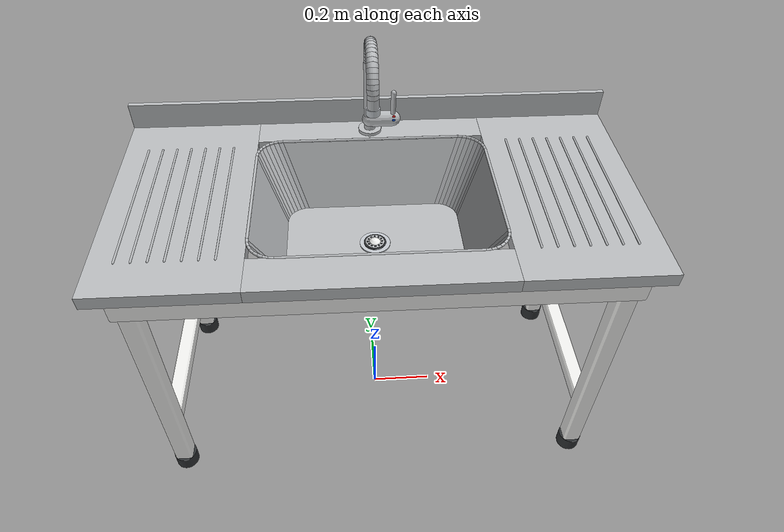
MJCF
<!-- Generated by scripts/generate_sink.py; do not edit by hand. -->
<mujoco model="sink"><asset>
<material name="panel" rgba="0.93 0.93 0.91 1" specular="0.35" shininess="0.5"/>
<material name="panel_joint" rgba="0.74 0.75 0.75 1"/>
<material name="floor" rgba="0.80 0.81 0.81 1" specular="0.3" shininess="0.6" reflectance="0.12"/>
<material name="ceiling" rgba="0.95 0.95 0.94 1" specular="0.05" emission="0.45"/>
<material name="led" rgba="0.98 0.99 1.0 1" emission="1"/>
<material name="grille" rgba="0.55 0.57 0.58 1"/>
<material name="worktop" rgba="0.95 0.95 0.94 1" specular="0.8" shininess="0.9" reflectance="0.3"/>
<material name="white" rgba="0.94 0.94 0.93 1" specular="0.3" shininess="0.4"/>
<material name="white_matte" rgba="0.92 0.92 0.91 1" specular="0.1"/>
<material name="shelf" rgba="0.95 0.95 0.95 1" specular="0.4" shininess="0.5"/>
<material name="seam" rgba="0.80 0.81 0.81 1"/>
<material name="amber" rgba="0.55 0.24 0.04 0.82" specular="0.9" shininess="0.95"/>
<material name="sample_hdpe" rgba="0.92 0.92 0.91 1" specular="0.25" shininess="0.4"/>
<material name="sample_cap" rgba="0.93 0.93 0.91 1" specular="0.3" shininess="0.5"/>
<material name="glass" rgba="0.80 0.90 0.95 0.15" specular="0.9" shininess="0.95" reflectance="0.1"/>
<material name="glass_clear" rgba="0.88 0.94 0.97 0.30" specular="0.9" shininess="0.95"/>
<material name="frosted" rgba="0.96 0.97 0.98 0.75"/>
<material name="aluminium" rgba="0.76 0.78 0.80 1" specular="0.7" shininess="0.7"/>
<material name="steel" rgba="0.72 0.73 0.74 1" specular="0.8" shininess="0.6"/>
<material name="black" rgba="0.05 0.05 0.06 1" specular="0.9" shininess="0.9"/>
<material name="dark" rgba="0.18 0.19 0.20 1"/>
<material name="grey_device" rgba="0.80 0.81 0.80 1" specular="0.3"/>
<material name="screen" rgba="0.10 0.16 0.22 1" emission="0.25"/>
<material name="orange" rgba="0.93 0.40 0.10 1"/>
<material name="blue_hdpe" rgba="0.05 0.28 0.72 1" specular="0.15"/>
<material name="blue_motor" rgba="0.10 0.30 0.70 1" specular="0.5"/>
<material name="stripe_blue" rgba="0.10 0.35 0.75 1"/>
<material name="cream" rgba="0.93 0.91 0.84 1" specular="0.3"/>
<material name="hdpe_white" rgba="0.93 0.93 0.90 0.85" specular="0.2"/>
<material name="kraft" rgba="0.60 0.45 0.28 1" specular="0.05"/>
<material name="tape" rgba="0.65 0.48 0.28 1" specular="0.3" shininess="0.2"/>
<material name="cardboard" rgba="0.72 0.58 0.40 1" specular="0.05"/>
<material name="red_rack" rgba="0.75 0.10 0.08 1" specular="0.3"/>
<material name="navy_rack" rgba="0.10 0.14 0.32 1" specular="0.3"/>
<material name="galvanised" rgba="0.68 0.70 0.71 1" specular="0.5"/>
<material name="foil" rgba="0.80 0.80 0.82 1" specular="1" shininess="1"/>
<material name="paper" rgba="0.98 0.98 0.97 1"/>
<material name="bag" rgba="0.95 0.95 0.93 0.55"/>
<material name="red_cap" rgba="0.80 0.10 0.10 1"/>
<material name="coat" rgba="0.95 0.96 0.97 1"/>
<material name="skin" rgba="0.80 0.64 0.52 1"/>
<material name="cap_blue" rgba="0.55 0.72 0.90 1"/>
<material name="trousers" rgba="0.20 0.22 0.28 1"/>
<material name="desk" rgba="0.86 0.84 0.80 1"/>
<mesh name="bevel_0" vertex="-0.028 -0.022 -0.394 -0.028 -0.022 0.394 -0.028 0.022 -0.394 -0.028 0.022 0.394 0.028 -0.022 -0.394 0.028 -0.022 0.394 0.028 0.022 -0.394 0.028 0.022 0.394 -0.022 -0.028 -0.394 -0.022 -0.028 0.394 -0.022 0.028 -0.394 -0.022 0.028 0.394 0.022 -0.028 -0.394 0.022 -0.028 0.394 0.022 0.028 -0.394 0.022 0.028 0.394 -0.022 -0.022 -0.4 -0.022 -0.022 0.4 -0.022 0.022 -0.4 -0.022 0.022 0.4 0.022 -0.022 -0.4 0.022 -0.022 0.4 0.022 0.022 -0.4 0.022 0.022 0.4"/>
<mesh name="bevel_1" vertex="-0.024 -0.2947 -0.0187 -0.024 -0.2947 0.0187 -0.024 0.2947 -0.0187 -0.024 0.2947 0.0187 0.024 -0.2947 -0.0187 0.024 -0.2947 0.0187 0.024 0.2947 -0.0187 0.024 0.2947 0.0187 -0.0187 -0.3 -0.0187 -0.0187 -0.3 0.0187 -0.0187 0.3 -0.0187 -0.0187 0.3 0.0187 0.0187 -0.3 -0.0187 0.0187 -0.3 0.0187 0.0187 0.3 -0.0187 0.0187 0.3 0.0187 -0.0187 -0.2947 -0.024 -0.0187 -0.2947 0.024 -0.0187 0.2947 -0.024 -0.0187 0.2947 0.024 0.0187 -0.2947 -0.024 0.0187 -0.2947 0.024 0.0187 0.2947 -0.024 0.0187 0.2947 0.024"/>
<mesh name="bevel_2" vertex="-0.67 -0.0187 -0.0187 -0.67 -0.0187 0.0187 -0.67 0.0187 -0.0187 -0.67 0.0187 0.0187 0.67 -0.0187 -0.0187 0.67 -0.0187 0.0187 0.67 0.0187 -0.0187 0.67 0.0187 0.0187 -0.6647 -0.024 -0.0187 -0.6647 -0.024 0.0187 -0.6647 0.024 -0.0187 -0.6647 0.024 0.0187 0.6647 -0.024 -0.0187 0.6647 -0.024 0.0187 0.6647 0.024 -0.0187 0.6647 0.024 0.0187 -0.6647 -0.0187 -0.024 -0.6647 -0.0187 0.024 -0.6647 0.0187 -0.024 -0.6647 0.0187 0.024 0.6647 -0.0187 -0.024 0.6647 -0.0187 0.024 0.6647 0.0187 -0.024 0.6647 0.0187 0.024"/>
<mesh name="bevel_3" vertex="-0.71 -0.0172 -0.0402 -0.71 -0.0172 0.0402 -0.71 0.0172 -0.0402 -0.71 0.0172 0.0402 0.71 -0.0172 -0.0402 0.71 -0.0172 0.0402 0.71 0.0172 -0.0402 0.71 0.0172 0.0402 -0.7052 -0.022 -0.0402 -0.7052 -0.022 0.0402 -0.7052 0.022 -0.0402 -0.7052 0.022 0.0402 0.7052 -0.022 -0.0402 0.7052 -0.022 0.0402 0.7052 0.022 -0.0402 0.7052 0.022 0.0402 -0.7052 -0.0172 -0.045 -0.7052 -0.0172 0.045 -0.7052 0.0172 -0.045 -0.7052 0.0172 0.045 0.7052 -0.0172 -0.045 0.7052 -0.0172 0.045 0.7052 0.0172 -0.045 0.7052 0.0172 0.045"/>
<mesh name="bowl_panel_0" vertex="0.349 0.185 0.919 0.3476 0.1996 0.919 0.27 0.115 0.715 0.2688 0.1277 0.715 0.349 0.185 0.915 0.3476 0.1996 0.915 0.27 0.115 0.711 0.2688 0.1277 0.711"/>
<mesh name="bowl_panel_1" vertex="0.3476 0.1996 0.919 0.3433 0.2137 0.919 0.2688 0.1277 0.715 0.2651 0.1399 0.715 0.3476 0.1996 0.915 0.3433 0.2137 0.915 0.2688 0.1277 0.711 0.2651 0.1399 0.711"/>
<mesh name="bowl_panel_2" vertex="0.3433 0.2137 0.919 0.3364 0.2267 0.919 0.2651 0.1399 0.715 0.259 0.1511 0.715 0.3433 0.2137 0.915 0.3364 0.2267 0.915 0.2651 0.1399 0.711 0.259 0.1511 0.711"/>
<mesh name="bowl_panel_3" vertex="0.3364 0.2267 0.919 0.327 0.238 0.919 0.259 0.1511 0.715 0.251 0.161 0.715 0.3364 0.2267 0.915 0.327 0.238 0.915 0.259 0.1511 0.711 0.251 0.161 0.711"/>
<mesh name="bowl_panel_4" vertex="0.327 0.238 0.919 0.3157 0.2474 0.919 0.251 0.161 0.715 0.2411 0.169 0.715 0.327 0.238 0.915 0.3157 0.2474 0.915 0.251 0.161 0.711 0.2411 0.169 0.711"/>
<mesh name="bowl_panel_5" vertex="0.3157 0.2474 0.919 0.3027 0.2543 0.919 0.2411 0.169 0.715 0.2299 0.1751 0.715 0.3157 0.2474 0.915 0.3027 0.2543 0.915 0.2411 0.169 0.711 0.2299 0.1751 0.711"/>
<mesh name="bowl_panel_6" vertex="0.3027 0.2543 0.919 0.2886 0.2586 0.919 0.2299 0.1751 0.715 0.2177 0.1788 0.715 0.3027 0.2543 0.915 0.2886 0.2586 0.915 0.2299 0.1751 0.711 0.2177 0.1788 0.711"/>
<mesh name="bowl_panel_7" vertex="0.2886 0.2586 0.919 0.274 0.26 0.919 0.2177 0.1788 0.715 0.205 0.18 0.715 0.2886 0.2586 0.915 0.274 0.26 0.915 0.2177 0.1788 0.711 0.205 0.18 0.711"/>
<mesh name="bowl_panel_8" vertex="0.274 0.26 0.919 -0.274 0.26 0.919 0.205 0.18 0.715 -0.205 0.18 0.715 0.274 0.26 0.915 -0.274 0.26 0.915 0.205 0.18 0.711 -0.205 0.18 0.711"/>
<mesh name="bowl_panel_9" vertex="-0.274 0.26 0.919 -0.2886 0.2586 0.919 -0.205 0.18 0.715 -0.2177 0.1788 0.715 -0.274 0.26 0.915 -0.2886 0.2586 0.915 -0.205 0.18 0.711 -0.2177 0.1788 0.711"/>
<mesh name="bowl_panel_10" vertex="-0.2886 0.2586 0.919 -0.3027 0.2543 0.919 -0.2177 0.1788 0.715 -0.2299 0.1751 0.715 -0.2886 0.2586 0.915 -0.3027 0.2543 0.915 -0.2177 0.1788 0.711 -0.2299 0.1751 0.711"/>
<mesh name="bowl_panel_11" vertex="-0.3027 0.2543 0.919 -0.3157 0.2474 0.919 -0.2299 0.1751 0.715 -0.2411 0.169 0.715 -0.3027 0.2543 0.915 -0.3157 0.2474 0.915 -0.2299 0.1751 0.711 -0.2411 0.169 0.711"/>
<mesh name="bowl_panel_12" vertex="-0.3157 0.2474 0.919 -0.327 0.238 0.919 -0.2411 0.169 0.715 -0.251 0.161 0.715 -0.3157 0.2474 0.915 -0.327 0.238 0.915 -0.2411 0.169 0.711 -0.251 0.161 0.711"/>
<mesh name="bowl_panel_13" vertex="-0.327 0.238 0.919 -0.3364 0.2267 0.919 -0.251 0.161 0.715 -0.259 0.1511 0.715 -0.327 0.238 0.915 -0.3364 0.2267 0.915 -0.251 0.161 0.711 -0.259 0.1511 0.711"/>
<mesh name="bowl_panel_14" vertex="-0.3364 0.2267 0.919 -0.3433 0.2137 0.919 -0.259 0.1511 0.715 -0.2651 0.1399 0.715 -0.3364 0.2267 0.915 -0.3433 0.2137 0.915 -0.259 0.1511 0.711 -0.2651 0.1399 0.711"/>
<mesh name="bowl_panel_15" vertex="-0.3433 0.2137 0.919 -0.3476 0.1996 0.919 -0.2651 0.1399 0.715 -0.2688 0.1277 0.715 -0.3433 0.2137 0.915 -0.3476 0.1996 0.915 -0.2651 0.1399 0.711 -0.2688 0.1277 0.711"/>
<mesh name="bowl_panel_16" vertex="-0.3476 0.1996 0.919 -0.349 0.185 0.919 -0.2688 0.1277 0.715 -0.27 0.115 0.715 -0.3476 0.1996 0.915 -0.349 0.185 0.915 -0.2688 0.1277 0.711 -0.27 0.115 0.711"/>
<mesh name="bowl_panel_17" vertex="-0.349 0.185 0.919 -0.349 -0.185 0.919 -0.27 0.115 0.715 -0.27 -0.115 0.715 -0.349 0.185 0.915 -0.349 -0.185 0.915 -0.27 0.115 0.711 -0.27 -0.115 0.711"/>
<mesh name="bowl_panel_18" vertex="-0.349 -0.185 0.919 -0.3476 -0.1996 0.919 -0.27 -0.115 0.715 -0.2688 -0.1277 0.715 -0.349 -0.185 0.915 -0.3476 -0.1996 0.915 -0.27 -0.115 0.711 -0.2688 -0.1277 0.711"/>
<mesh name="bowl_panel_19" vertex="-0.3476 -0.1996 0.919 -0.3433 -0.2137 0.919 -0.2688 -0.1277 0.715 -0.2651 -0.1399 0.715 -0.3476 -0.1996 0.915 -0.3433 -0.2137 0.915 -0.2688 -0.1277 0.711 -0.2651 -0.1399 0.711"/>
<mesh name="bowl_panel_20" vertex="-0.3433 -0.2137 0.919 -0.3364 -0.2267 0.919 -0.2651 -0.1399 0.715 -0.259 -0.1511 0.715 -0.3433 -0.2137 0.915 -0.3364 -0.2267 0.915 -0.2651 -0.1399 0.711 -0.259 -0.1511 0.711"/>
<mesh name="bowl_panel_21" vertex="-0.3364 -0.2267 0.919 -0.327 -0.238 0.919 -0.259 -0.1511 0.715 -0.251 -0.161 0.715 -0.3364 -0.2267 0.915 -0.327 -0.238 0.915 -0.259 -0.1511 0.711 -0.251 -0.161 0.711"/>
<mesh name="bowl_panel_22" vertex="-0.327 -0.238 0.919 -0.3157 -0.2474 0.919 -0.251 -0.161 0.715 -0.2411 -0.169 0.715 -0.327 -0.238 0.915 -0.3157 -0.2474 0.915 -0.251 -0.161 0.711 -0.2411 -0.169 0.711"/>
<mesh name="bowl_panel_23" vertex="-0.3157 -0.2474 0.919 -0.3027 -0.2543 0.919 -0.2411 -0.169 0.715 -0.2299 -0.1751 0.715 -0.3157 -0.2474 0.915 -0.3027 -0.2543 0.915 -0.2411 -0.169 0.711 -0.2299 -0.1751 0.711"/>
<mesh name="bowl_panel_24" vertex="-0.3027 -0.2543 0.919 -0.2886 -0.2586 0.919 -0.2299 -0.1751 0.715 -0.2177 -0.1788 0.715 -0.3027 -0.2543 0.915 -0.2886 -0.2586 0.915 -0.2299 -0.1751 0.711 -0.2177 -0.1788 0.711"/>
<mesh name="bowl_panel_25" vertex="-0.2886 -0.2586 0.919 -0.274 -0.26 0.919 -0.2177 -0.1788 0.715 -0.205 -0.18 0.715 -0.2886 -0.2586 0.915 -0.274 -0.26 0.915 -0.2177 -0.1788 0.711 -0.205 -0.18 0.711"/>
<mesh name="bowl_panel_26" vertex="-0.274 -0.26 0.919 0.274 -0.26 0.919 -0.205 -0.18 0.715 0.205 -0.18 0.715 -0.274 -0.26 0.915 0.274 -0.26 0.915 -0.205 -0.18 0.711 0.205 -0.18 0.711"/>
<mesh name="bowl_panel_27" vertex="0.274 -0.26 0.919 0.2886 -0.2586 0.919 0.205 -0.18 0.715 0.2177 -0.1788 0.715 0.274 -0.26 0.915 0.2886 -0.2586 0.915 0.205 -0.18 0.711 0.2177 -0.1788 0.711"/>
<mesh name="bowl_panel_28" vertex="0.2886 -0.2586 0.919 0.3027 -0.2543 0.919 0.2177 -0.1788 0.715 0.2299 -0.1751 0.715 0.2886 -0.2586 0.915 0.3027 -0.2543 0.915 0.2177 -0.1788 0.711 0.2299 -0.1751 0.711"/>
<mesh name="bowl_panel_29" vertex="0.3027 -0.2543 0.919 0.3157 -0.2474 0.919 0.2299 -0.1751 0.715 0.2411 -0.169 0.715 0.3027 -0.2543 0.915 0.3157 -0.2474 0.915 0.2299 -0.1751 0.711 0.2411 -0.169 0.711"/>
<mesh name="bowl_panel_30" vertex="0.3157 -0.2474 0.919 0.327 -0.238 0.919 0.2411 -0.169 0.715 0.251 -0.161 0.715 0.3157 -0.2474 0.915 0.327 -0.238 0.915 0.2411 -0.169 0.711 0.251 -0.161 0.711"/>
<mesh name="bowl_panel_31" vertex="0.327 -0.238 0.919 0.3364 -0.2267 0.919 0.251 -0.161 0.715 0.259 -0.1511 0.715 0.327 -0.238 0.915 0.3364 -0.2267 0.915 0.251 -0.161 0.711 0.259 -0.1511 0.711"/>
<mesh name="bowl_panel_32" vertex="0.3364 -0.2267 0.919 0.3433 -0.2137 0.919 0.259 -0.1511 0.715 0.2651 -0.1399 0.715 0.3364 -0.2267 0.915 0.3433 -0.2137 0.915 0.259 -0.1511 0.711 0.2651 -0.1399 0.711"/>
<mesh name="bowl_panel_33" vertex="0.3433 -0.2137 0.919 0.3476 -0.1996 0.919 0.2651 -0.1399 0.715 0.2688 -0.1277 0.715 0.3433 -0.2137 0.915 0.3476 -0.1996 0.915 0.2651 -0.1399 0.711 0.2688 -0.1277 0.711"/>
<mesh name="bowl_panel_34" vertex="0.3476 -0.1996 0.919 0.349 -0.185 0.919 0.2688 -0.1277 0.715 0.27 -0.115 0.715 0.3476 -0.1996 0.915 0.349 -0.185 0.915 0.2688 -0.1277 0.711 0.27 -0.115 0.711"/>
<mesh name="bowl_panel_35" vertex="0.349 -0.185 0.919 0.349 0.185 0.919 0.27 -0.115 0.715 0.27 0.115 0.715 0.349 -0.185 0.915 0.349 0.185 0.915 0.27 -0.115 0.711 0.27 0.115 0.711"/>
<mesh name="bowl_floor" vertex="0.27 0.115 0.715 0.2688 0.1277 0.715 0.2651 0.1399 0.715 0.259 0.1511 0.715 0.251 0.161 0.715 0.2411 0.169 0.715 0.2299 0.1751 0.715 0.2177 0.1788 0.715 0.205 0.18 0.715 -0.205 0.18 0.715 -0.2177 0.1788 0.715 -0.2299 0.1751 0.715 -0.2411 0.169 0.715 -0.251 0.161 0.715 -0.259 0.1511 0.715 -0.2651 0.1399 0.715 -0.2688 0.1277 0.715 -0.27 0.115 0.715 -0.27 -0.115 0.715 -0.2688 -0.1277 0.715 -0.2651 -0.1399 0.715 -0.259 -0.1511 0.715 -0.251 -0.161 0.715 -0.2411 -0.169 0.715 -0.2299 -0.1751 0.715 -0.2177 -0.1788 0.715 -0.205 -0.18 0.715 0.205 -0.18 0.715 0.2177 -0.1788 0.715 0.2299 -0.1751 0.715 0.2411 -0.169 0.715 0.251 -0.161 0.715 0.259 -0.1511 0.715 0.2651 -0.1399 0.715 0.2688 -0.1277 0.715 0.27 -0.115 0.715 0.27 0.115 0.709 0.2688 0.1277 0.709 0.2651 0.1399 0.709 0.259 0.1511 0.709 0.251 0.161 0.709 0.2411 0.169 0.709 0.2299 0.1751 0.709 0.2177 0.1788 0.709 0.205 0.18 0.709 -0.205 0.18 0.709 -0.2177 0.1788 0.709 -0.2299 0.1751 0.709 -0.2411 0.169 0.709 -0.251 0.161 0.709 -0.259 0.1511 0.709 -0.2651 0.1399 0.709 -0.2688 0.1277 0.709 -0.27 0.115 0.709 -0.27 -0.115 0.709 -0.2688 -0.1277 0.709 -0.2651 -0.1399 0.709 -0.259 -0.1511 0.709 -0.251 -0.161 0.709 -0.2411 -0.169 0.709 -0.2299 -0.1751 0.709 -0.2177 -0.1788 0.709 -0.205 -0.18 0.709 0.205 -0.18 0.709 0.2177 -0.1788 0.709 0.2299 -0.1751 0.709 0.2411 -0.169 0.709 0.251 -0.161 0.709 0.259 -0.1511 0.709 0.2651 -0.1399 0.709 0.2688 -0.1277 0.709 0.27 -0.115 0.709"/>
</asset><worldbody><body name="sink">
      <geom type="box" pos="-0.67 -0.3 0.44" size="0.028 0.028 0.4" group="3" rgba="0 0 0 0"/>
      <geom name="leg_0" type="mesh" mesh="bevel_0" pos="-0.67 -0.3 0.44" material="white" contype="0" conaffinity="0" group="1"/>
      <geom name="adjustable_foot_0" type="cylinder" pos="-0.67 -0.3 0.025" size="0.037 0.025" material="dark" group="1"/>
      <geom name="foot_thread_0" type="cylinder" pos="-0.67 -0.3 0.061" size="0.014 0.027" material="steel" contype="0" conaffinity="0" group="1"/>
      <geom type="box" pos="-0.67 0.3 0.44" size="0.028 0.028 0.4" group="3" rgba="0 0 0 0"/>
      <geom name="leg_1" type="mesh" mesh="bevel_0" pos="-0.67 0.3 0.44" material="white" contype="0" conaffinity="0" group="1"/>
      <geom name="adjustable_foot_1" type="cylinder" pos="-0.67 0.3 0.025" size="0.037 0.025" material="dark" group="1"/>
      <geom name="foot_thread_1" type="cylinder" pos="-0.67 0.3 0.061" size="0.014 0.027" material="steel" contype="0" conaffinity="0" group="1"/>
      <geom type="box" pos="-0.67 0 0.24" size="0.024 0.3 0.024" group="3" rgba="0 0 0 0"/>
      <geom name="end_rail_0" type="mesh" mesh="bevel_1" pos="-0.67 0 0.24" material="white" contype="0" conaffinity="0" group="1"/>
      <geom type="box" pos="0.67 -0.3 0.44" size="0.028 0.028 0.4" group="3" rgba="0 0 0 0"/>
      <geom name="leg_2" type="mesh" mesh="bevel_0" pos="0.67 -0.3 0.44" material="white" contype="0" conaffinity="0" group="1"/>
      <geom name="adjustable_foot_2" type="cylinder" pos="0.67 -0.3 0.025" size="0.037 0.025" material="dark" group="1"/>
      <geom name="foot_thread_2" type="cylinder" pos="0.67 -0.3 0.061" size="0.014 0.027" material="steel" contype="0" conaffinity="0" group="1"/>
      <geom type="box" pos="0.67 0.3 0.44" size="0.028 0.028 0.4" group="3" rgba="0 0 0 0"/>
      <geom name="leg_3" type="mesh" mesh="bevel_0" pos="0.67 0.3 0.44" material="white" contype="0" conaffinity="0" group="1"/>
      <geom name="adjustable_foot_3" type="cylinder" pos="0.67 0.3 0.025" size="0.037 0.025" material="dark" group="1"/>
      <geom name="foot_thread_3" type="cylinder" pos="0.67 0.3 0.061" size="0.014 0.027" material="steel" contype="0" conaffinity="0" group="1"/>
      <geom type="box" pos="0.67 0 0.24" size="0.024 0.3 0.024" group="3" rgba="0 0 0 0"/>
      <geom name="end_rail_1" type="mesh" mesh="bevel_1" pos="0.67 0 0.24" material="white" contype="0" conaffinity="0" group="1"/>
      <geom type="box" pos="0 0.3 0.24" size="0.67 0.024 0.024" group="3" rgba="0 0 0 0"/>
      <geom name="rear_rail_0" type="mesh" mesh="bevel_2" pos="0 0.3 0.24" material="white" contype="0" conaffinity="0" group="1"/>
      <geom type="box" pos="0 -0.32 0.83" size="0.71 0.022 0.045" group="3" rgba="0 0 0 0"/>
      <geom name="apron_0" type="mesh" mesh="bevel_3" pos="0 -0.32 0.83" material="white" contype="0" conaffinity="0" group="1"/>
      <geom type="box" pos="0 0.32 0.83" size="0.71 0.022 0.045" group="3" rgba="0 0 0 0"/>
      <geom name="apron_1" type="mesh" mesh="bevel_3" pos="0 0.32 0.83" material="white" contype="0" conaffinity="0" group="1"/>
      <geom name="draining_board_0" type="box" size="0.201 0.377 0.019" pos="-0.55 0 0.901" material="steel" group="1"/>
      <geom name="drainer_rib_0" type="capsule" fromto="-0.68 -0.26 0.922 -0.68 0.23 0.922" size="0.003" material="steel" contype="0" conaffinity="0" group="1"/>
      <geom name="drainer_rib_1" type="capsule" fromto="-0.637 -0.26 0.922 -0.637 0.23 0.922" size="0.003" material="steel" contype="0" conaffinity="0" group="1"/>
      <geom name="drainer_rib_2" type="capsule" fromto="-0.594 -0.26 0.922 -0.594 0.23 0.922" size="0.003" material="steel" contype="0" conaffinity="0" group="1"/>
      <geom name="drainer_rib_3" type="capsule" fromto="-0.551 -0.26 0.922 -0.551 0.23 0.922" size="0.003" material="steel" contype="0" conaffinity="0" group="1"/>
      <geom name="drainer_rib_4" type="capsule" fromto="-0.508 -0.26 0.922 -0.508 0.23 0.922" size="0.003" material="steel" contype="0" conaffinity="0" group="1"/>
      <geom name="drainer_rib_5" type="capsule" fromto="-0.465 -0.26 0.922 -0.465 0.23 0.922" size="0.003" material="steel" contype="0" conaffinity="0" group="1"/>
      <geom name="drainer_rib_6" type="capsule" fromto="-0.422 -0.26 0.922 -0.422 0.23 0.922" size="0.003" material="steel" contype="0" conaffinity="0" group="1"/>
      <geom name="draining_board_1" type="box" size="0.201 0.377 0.019" pos="0.55 0 0.901" material="steel" group="1"/>
      <geom name="drainer_rib_7" type="capsule" fromto="0.42 -0.26 0.922 0.42 0.23 0.922" size="0.003" material="steel" contype="0" conaffinity="0" group="1"/>
      <geom name="drainer_rib_8" type="capsule" fromto="0.463 -0.26 0.922 0.463 0.23 0.922" size="0.003" material="steel" contype="0" conaffinity="0" group="1"/>
      <geom name="drainer_rib_9" type="capsule" fromto="0.506 -0.26 0.922 0.506 0.23 0.922" size="0.003" material="steel" contype="0" conaffinity="0" group="1"/>
      <geom name="drainer_rib_10" type="capsule" fromto="0.549 -0.26 0.922 0.549 0.23 0.922" size="0.003" material="steel" contype="0" conaffinity="0" group="1"/>
      <geom name="drainer_rib_11" type="capsule" fromto="0.592 -0.26 0.922 0.592 0.23 0.922" size="0.003" material="steel" contype="0" conaffinity="0" group="1"/>
      <geom name="drainer_rib_12" type="capsule" fromto="0.635 -0.26 0.922 0.635 0.23 0.922" size="0.003" material="steel" contype="0" conaffinity="0" group="1"/>
      <geom name="drainer_rib_13" type="capsule" fromto="0.678 -0.26 0.922 0.678 0.23 0.922" size="0.003" material="steel" contype="0" conaffinity="0" group="1"/>
      <geom name="basin_rim_0" type="box" size="0.349 0.0585 0.019" pos="0 -0.3185 0.901" material="steel" group="1"/>
      <geom name="basin_rim_1" type="box" size="0.349 0.0585 0.019" pos="0 0.3185 0.901" material="steel" group="1"/>
      <geom name="backsplash_0" type="box" size="0.751 0.008 0.043" pos="0 0.369 0.957" material="steel" group="1"/>
      <geom name="bowl_panel_0" type="mesh" mesh="bowl_panel_0" material="steel" group="1"/>
      <geom name="rolled_rim_0" type="capsule" fromto="0.349 0.185 0.919 0.3476 0.1996 0.919" size="0.004" material="steel" contype="0" conaffinity="0" group="1"/>
      <geom name="bowl_panel_1" type="mesh" mesh="bowl_panel_1" material="steel" group="1"/>
      <geom name="rolled_rim_1" type="capsule" fromto="0.3476 0.1996 0.919 0.3433 0.2137 0.919" size="0.004" material="steel" contype="0" conaffinity="0" group="1"/>
      <geom name="bowl_panel_2" type="mesh" mesh="bowl_panel_2" material="steel" group="1"/>
      <geom name="rolled_rim_2" type="capsule" fromto="0.3433 0.2137 0.919 0.3364 0.2267 0.919" size="0.004" material="steel" contype="0" conaffinity="0" group="1"/>
      <geom name="bowl_panel_3" type="mesh" mesh="bowl_panel_3" material="steel" group="1"/>
      <geom name="rolled_rim_3" type="capsule" fromto="0.3364 0.2267 0.919 0.327 0.238 0.919" size="0.004" material="steel" contype="0" conaffinity="0" group="1"/>
      <geom name="bowl_panel_4" type="mesh" mesh="bowl_panel_4" material="steel" group="1"/>
      <geom name="rolled_rim_4" type="capsule" fromto="0.327 0.238 0.919 0.3157 0.2474 0.919" size="0.004" material="steel" contype="0" conaffinity="0" group="1"/>
      <geom name="bowl_panel_5" type="mesh" mesh="bowl_panel_5" material="steel" group="1"/>
      <geom name="rolled_rim_5" type="capsule" fromto="0.3157 0.2474 0.919 0.3027 0.2543 0.919" size="0.004" material="steel" contype="0" conaffinity="0" group="1"/>
      <geom name="bowl_panel_6" type="mesh" mesh="bowl_panel_6" material="steel" group="1"/>
      <geom name="rolled_rim_6" type="capsule" fromto="0.3027 0.2543 0.919 0.2886 0.2586 0.919" size="0.004" material="steel" contype="0" conaffinity="0" group="1"/>
      <geom name="bowl_panel_7" type="mesh" mesh="bowl_panel_7" material="steel" group="1"/>
      <geom name="rolled_rim_7" type="capsule" fromto="0.2886 0.2586 0.919 0.274 0.26 0.919" size="0.004" material="steel" contype="0" conaffinity="0" group="1"/>
      <geom name="bowl_panel_8" type="mesh" mesh="bowl_panel_8" material="steel" group="1"/>
      <geom name="rolled_rim_8" type="capsule" fromto="0.274 0.26 0.919 -0.274 0.26 0.919" size="0.004" material="steel" contype="0" conaffinity="0" group="1"/>
      <geom name="bowl_panel_9" type="mesh" mesh="bowl_panel_9" material="steel" group="1"/>
      <geom name="rolled_rim_9" type="capsule" fromto="-0.274 0.26 0.919 -0.2886 0.2586 0.919" size="0.004" material="steel" contype="0" conaffinity="0" group="1"/>
      <geom name="bowl_panel_10" type="mesh" mesh="bowl_panel_10" material="steel" group="1"/>
      <geom name="rolled_rim_10" type="capsule" fromto="-0.2886 0.2586 0.919 -0.3027 0.2543 0.919" size="0.004" material="steel" contype="0" conaffinity="0" group="1"/>
      <geom name="bowl_panel_11" type="mesh" mesh="bowl_panel_11" material="steel" group="1"/>
      <geom name="rolled_rim_11" type="capsule" fromto="-0.3027 0.2543 0.919 -0.3157 0.2474 0.919" size="0.004" material="steel" contype="0" conaffinity="0" group="1"/>
      <geom name="bowl_panel_12" type="mesh" mesh="bowl_panel_12" material="steel" group="1"/>
      <geom name="rolled_rim_12" type="capsule" fromto="-0.3157 0.2474 0.919 -0.327 0.238 0.919" size="0.004" material="steel" contype="0" conaffinity="0" group="1"/>
      <geom name="bowl_panel_13" type="mesh" mesh="bowl_panel_13" material="steel" group="1"/>
      <geom name="rolled_rim_13" type="capsule" fromto="-0.327 0.238 0.919 -0.3364 0.2267 0.919" size="0.004" material="steel" contype="0" conaffinity="0" group="1"/>
      <geom name="bowl_panel_14" type="mesh" mesh="bowl_panel_14" material="steel" group="1"/>
      <geom name="rolled_rim_14" type="capsule" fromto="-0.3364 0.2267 0.919 -0.3433 0.2137 0.919" size="0.004" material="steel" contype="0" conaffinity="0" group="1"/>
      <geom name="bowl_panel_15" type="mesh" mesh="bowl_panel_15" material="steel" group="1"/>
      <geom name="rolled_rim_15" type="capsule" fromto="-0.3433 0.2137 0.919 -0.3476 0.1996 0.919" size="0.004" material="steel" contype="0" conaffinity="0" group="1"/>
      <geom name="bowl_panel_16" type="mesh" mesh="bowl_panel_16" material="steel" group="1"/>
      <geom name="rolled_rim_16" type="capsule" fromto="-0.3476 0.1996 0.919 -0.349 0.185 0.919" size="0.004" material="steel" contype="0" conaffinity="0" group="1"/>
      <geom name="bowl_panel_17" type="mesh" mesh="bowl_panel_17" material="steel" group="1"/>
      <geom name="rolled_rim_17" type="capsule" fromto="-0.349 0.185 0.919 -0.349 -0.185 0.919" size="0.004" material="steel" contype="0" conaffinity="0" group="1"/>
      <geom name="bowl_panel_18" type="mesh" mesh="bowl_panel_18" material="steel" group="1"/>
      <geom name="rolled_rim_18" type="capsule" fromto="-0.349 -0.185 0.919 -0.3476 -0.1996 0.919" size="0.004" material="steel" contype="0" conaffinity="0" group="1"/>
      <geom name="bowl_panel_19" type="mesh" mesh="bowl_panel_19" material="steel" group="1"/>
      <geom name="rolled_rim_19" type="capsule" fromto="-0.3476 -0.1996 0.919 -0.3433 -0.2137 0.919" size="0.004" material="steel" contype="0" conaffinity="0" group="1"/>
      <geom name="bowl_panel_20" type="mesh" mesh="bowl_panel_20" material="steel" group="1"/>
      <geom name="rolled_rim_20" type="capsule" fromto="-0.3433 -0.2137 0.919 -0.3364 -0.2267 0.919" size="0.004" material="steel" contype="0" conaffinity="0" group="1"/>
      <geom name="bowl_panel_21" type="mesh" mesh="bowl_panel_21" material="steel" group="1"/>
      <geom name="rolled_rim_21" type="capsule" fromto="-0.3364 -0.2267 0.919 -0.327 -0.238 0.919" size="0.004" material="steel" contype="0" conaffinity="0" group="1"/>
      <geom name="bowl_panel_22" type="mesh" mesh="bowl_panel_22" material="steel" group="1"/>
      <geom name="rolled_rim_22" type="capsule" fromto="-0.327 -0.238 0.919 -0.3157 -0.2474 0.919" size="0.004" material="steel" contype="0" conaffinity="0" group="1"/>
      <geom name="bowl_panel_23" type="mesh" mesh="bowl_panel_23" material="steel" group="1"/>
      <geom name="rolled_rim_23" type="capsule" fromto="-0.3157 -0.2474 0.919 -0.3027 -0.2543 0.919" size="0.004" material="steel" contype="0" conaffinity="0" group="1"/>
      <geom name="bowl_panel_24" type="mesh" mesh="bowl_panel_24" material="steel" group="1"/>
      <geom name="rolled_rim_24" type="capsule" fromto="-0.3027 -0.2543 0.919 -0.2886 -0.2586 0.919" size="0.004" material="steel" contype="0" conaffinity="0" group="1"/>
      <geom name="bowl_panel_25" type="mesh" mesh="bowl_panel_25" material="steel" group="1"/>
      <geom name="rolled_rim_25" type="capsule" fromto="-0.2886 -0.2586 0.919 -0.274 -0.26 0.919" size="0.004" material="steel" contype="0" conaffinity="0" group="1"/>
      <geom name="bowl_panel_26" type="mesh" mesh="bowl_panel_26" material="steel" group="1"/>
      <geom name="rolled_rim_26" type="capsule" fromto="-0.274 -0.26 0.919 0.274 -0.26 0.919" size="0.004" material="steel" contype="0" conaffinity="0" group="1"/>
      <geom name="bowl_panel_27" type="mesh" mesh="bowl_panel_27" material="steel" group="1"/>
      <geom name="rolled_rim_27" type="capsule" fromto="0.274 -0.26 0.919 0.2886 -0.2586 0.919" size="0.004" material="steel" contype="0" conaffinity="0" group="1"/>
      <geom name="bowl_panel_28" type="mesh" mesh="bowl_panel_28" material="steel" group="1"/>
      <geom name="rolled_rim_28" type="capsule" fromto="0.2886 -0.2586 0.919 0.3027 -0.2543 0.919" size="0.004" material="steel" contype="0" conaffinity="0" group="1"/>
      <geom name="bowl_panel_29" type="mesh" mesh="bowl_panel_29" material="steel" group="1"/>
      <geom name="rolled_rim_29" type="capsule" fromto="0.3027 -0.2543 0.919 0.3157 -0.2474 0.919" size="0.004" material="steel" contype="0" conaffinity="0" group="1"/>
      <geom name="bowl_panel_30" type="mesh" mesh="bowl_panel_30" material="steel" group="1"/>
      <geom name="rolled_rim_30" type="capsule" fromto="0.3157 -0.2474 0.919 0.327 -0.238 0.919" size="0.004" material="steel" contype="0" conaffinity="0" group="1"/>
      <geom name="bowl_panel_31" type="mesh" mesh="bowl_panel_31" material="steel" group="1"/>
      <geom name="rolled_rim_31" type="capsule" fromto="0.327 -0.238 0.919 0.3364 -0.2267 0.919" size="0.004" material="steel" contype="0" conaffinity="0" group="1"/>
      <geom name="bowl_panel_32" type="mesh" mesh="bowl_panel_32" material="steel" group="1"/>
      <geom name="rolled_rim_32" type="capsule" fromto="0.3364 -0.2267 0.919 0.3433 -0.2137 0.919" size="0.004" material="steel" contype="0" conaffinity="0" group="1"/>
      <geom name="bowl_panel_33" type="mesh" mesh="bowl_panel_33" material="steel" group="1"/>
      <geom name="rolled_rim_33" type="capsule" fromto="0.3433 -0.2137 0.919 0.3476 -0.1996 0.919" size="0.004" material="steel" contype="0" conaffinity="0" group="1"/>
      <geom name="bowl_panel_34" type="mesh" mesh="bowl_panel_34" material="steel" group="1"/>
      <geom name="rolled_rim_34" type="capsule" fromto="0.3476 -0.1996 0.919 0.349 -0.185 0.919" size="0.004" material="steel" contype="0" conaffinity="0" group="1"/>
      <geom name="bowl_panel_35" type="mesh" mesh="bowl_panel_35" material="steel" group="1"/>
      <geom name="rolled_rim_35" type="capsule" fromto="0.349 -0.185 0.919 0.349 0.185 0.919" size="0.004" material="steel" contype="0" conaffinity="0" group="1"/>
      <geom name="bowl_floor" type="mesh" mesh="bowl_floor" material="steel" group="1"/>
      <geom name="drain_flange_0" type="cylinder" pos="0 0 0.717" size="0.047 0.002" material="aluminium" contype="0" conaffinity="0" group="1"/>
      <geom name="drain_inset_0" type="cylinder" pos="0 0 0.72" size="0.034 0.001" material="dark" contype="0" conaffinity="0" group="1"/>
      <geom name="strainer_0" type="cylinder" pos="0 0 0.722" size="0.029 0.001" material="steel" contype="0" conaffinity="0" group="1"/>
      <geom name="strainer_hole_0" type="cylinder" pos="0.022 0 0.7232" size="0.003 0.0003" material="dark" contype="0" conaffinity="0" group="1"/>
      <geom name="strainer_hole_1" type="cylinder" pos="0.0191 0.011 0.7232" size="0.003 0.0003" material="dark" contype="0" conaffinity="0" group="1"/>
      <geom name="strainer_hole_2" type="cylinder" pos="0.011 0.0191 0.7232" size="0.003 0.0003" material="dark" contype="0" conaffinity="0" group="1"/>
      <geom name="strainer_hole_3" type="cylinder" pos="0 0.022 0.7232" size="0.003 0.0003" material="dark" contype="0" conaffinity="0" group="1"/>
      <geom name="strainer_hole_4" type="cylinder" pos="-0.011 0.0191 0.7232" size="0.003 0.0003" material="dark" contype="0" conaffinity="0" group="1"/>
      <geom name="strainer_hole_5" type="cylinder" pos="-0.0191 0.011 0.7232" size="0.003 0.0003" material="dark" contype="0" conaffinity="0" group="1"/>
      <geom name="strainer_hole_6" type="cylinder" pos="-0.022 0 0.7232" size="0.003 0.0003" material="dark" contype="0" conaffinity="0" group="1"/>
      <geom name="strainer_hole_7" type="cylinder" pos="-0.0191 -0.011 0.7232" size="0.003 0.0003" material="dark" contype="0" conaffinity="0" group="1"/>
      <geom name="strainer_hole_8" type="cylinder" pos="-0.011 -0.0191 0.7232" size="0.003 0.0003" material="dark" contype="0" conaffinity="0" group="1"/>
      <geom name="strainer_hole_9" type="cylinder" pos="0 -0.022 0.7232" size="0.003 0.0003" material="dark" contype="0" conaffinity="0" group="1"/>
      <geom name="strainer_hole_10" type="cylinder" pos="0.011 -0.0191 0.7232" size="0.003 0.0003" material="dark" contype="0" conaffinity="0" group="1"/>
      <geom name="strainer_hole_11" type="cylinder" pos="0.0191 -0.011 0.7232" size="0.003 0.0003" material="dark" contype="0" conaffinity="0" group="1"/>
      <geom name="tap_mount_0" type="cylinder" pos="0 0.31 0.925" size="0.036 0.005" material="steel" contype="0" conaffinity="0" group="1"/>
      <geom name="tap_stem_0" type="capsule" fromto="0 0.31 0.93 0 0.31 1.15" size="0.018" material="steel" contype="0" conaffinity="0" group="1"/>
      <geom name="tap_bend_0" type="capsule" fromto="0 0.31 1.15 0 0.3091 1.1631" size="0.017" material="steel" contype="0" conaffinity="0" group="1"/>
      <geom name="tap_bend_1" type="capsule" fromto="0 0.3091 1.1631 0 0.3066 1.1759" size="0.017" material="steel" contype="0" conaffinity="0" group="1"/>
      <geom name="tap_bend_2" type="capsule" fromto="0 0.3066 1.1759 0 0.3024 1.1883" size="0.017" material="steel" contype="0" conaffinity="0" group="1"/>
      <geom name="tap_bend_3" type="capsule" fromto="0 0.3024 1.1883 0 0.2966 1.2" size="0.017" material="steel" contype="0" conaffinity="0" group="1"/>
      <geom name="tap_bend_4" type="capsule" fromto="0 0.2966 1.2 0 0.2893 1.2109" size="0.017" material="steel" contype="0" conaffinity="0" group="1"/>
      <geom name="tap_bend_5" type="capsule" fromto="0 0.2893 1.2109 0 0.2807 1.2207" size="0.017" material="steel" contype="0" conaffinity="0" group="1"/>
      <geom name="tap_bend_6" type="capsule" fromto="0 0.2807 1.2207 0 0.2709 1.2293" size="0.017" material="steel" contype="0" conaffinity="0" group="1"/>
      <geom name="tap_bend_7" type="capsule" fromto="0 0.2709 1.2293 0 0.26 1.2366" size="0.017" material="steel" contype="0" conaffinity="0" group="1"/>
      <geom name="tap_bend_8" type="capsule" fromto="0 0.26 1.2366 0 0.2483 1.2424" size="0.017" material="steel" contype="0" conaffinity="0" group="1"/>
      <geom name="tap_bend_9" type="capsule" fromto="0 0.2483 1.2424 0 0.2359 1.2466" size="0.017" material="steel" contype="0" conaffinity="0" group="1"/>
      <geom name="tap_bend_10" type="capsule" fromto="0 0.2359 1.2466 0 0.2231 1.2491" size="0.017" material="steel" contype="0" conaffinity="0" group="1"/>
      <geom name="tap_bend_11" type="capsule" fromto="0 0.2231 1.2491 0 0.21 1.25" size="0.017" material="steel" contype="0" conaffinity="0" group="1"/>
      <geom name="tap_bend_12" type="capsule" fromto="0 0.21 1.25 0 0.1969 1.2491" size="0.017" material="steel" contype="0" conaffinity="0" group="1"/>
      <geom name="tap_bend_13" type="capsule" fromto="0 0.1969 1.2491 0 0.1841 1.2466" size="0.017" material="steel" contype="0" conaffinity="0" group="1"/>
      <geom name="tap_bend_14" type="capsule" fromto="0 0.1841 1.2466 0 0.1717 1.2424" size="0.017" material="steel" contype="0" conaffinity="0" group="1"/>
      <geom name="tap_bend_15" type="capsule" fromto="0 0.1717 1.2424 0 0.16 1.2366" size="0.017" material="steel" contype="0" conaffinity="0" group="1"/>
      <geom name="tap_bend_16" type="capsule" fromto="0 0.16 1.2366 0 0.1491 1.2293" size="0.017" material="steel" contype="0" conaffinity="0" group="1"/>
      <geom name="tap_bend_17" type="capsule" fromto="0 0.1491 1.2293 0 0.1393 1.2207" size="0.017" material="steel" contype="0" conaffinity="0" group="1"/>
      <geom name="tap_bend_18" type="capsule" fromto="0 0.1393 1.2207 0 0.1307 1.2109" size="0.017" material="steel" contype="0" conaffinity="0" group="1"/>
      <geom name="tap_bend_19" type="capsule" fromto="0 0.1307 1.2109 0 0.1234 1.2" size="0.017" material="steel" contype="0" conaffinity="0" group="1"/>
      <geom name="tap_bend_20" type="capsule" fromto="0 0.1234 1.2 0 0.1176 1.1883" size="0.017" material="steel" contype="0" conaffinity="0" group="1"/>
      <geom name="tap_bend_21" type="capsule" fromto="0 0.1176 1.1883 0 0.1134 1.1759" size="0.017" material="steel" contype="0" conaffinity="0" group="1"/>
      <geom name="tap_bend_22" type="capsule" fromto="0 0.1134 1.1759 0 0.1109 1.1631" size="0.017" material="steel" contype="0" conaffinity="0" group="1"/>
      <geom name="tap_bend_23" type="capsule" fromto="0 0.1109 1.1631 0 0.11 1.15" size="0.017" material="steel" contype="0" conaffinity="0" group="1"/>
      <geom name="tap_spout_0" type="capsule" fromto="0 0.11 1.15 0 0.11 1.115" size="0.017" material="steel" contype="0" conaffinity="0" group="1"/>
      <geom name="aerator_0" type="cylinder" pos="0 0.11 1.111" size="0.02 0.01" material="aluminium" contype="0" conaffinity="0" group="1"/>
      <geom name="aerator_mesh_0" type="cylinder" pos="0 0.11 1.1005" size="0.015 0.0005" material="dark" contype="0" conaffinity="0" group="1"/>
      <geom name="mixer_0" type="capsule" fromto="0 0.31 0.96 0.072 0.31 0.96" size="0.024" material="steel" contype="0" conaffinity="0" group="1"/>
      <geom name="lever_0" type="capsule" fromto="0.072 0.31 0.96 0.072 0.29 1.06" size="0.008" material="steel" contype="0" conaffinity="0" group="1"/>
      <geom name="hot_indicator_0" type="ellipsoid" pos="0.074 0.287 0.98" size="0.005 0.002 0.004" material="red_cap" contype="0" conaffinity="0" group="1"/>
      <geom name="cold_indicator_0" type="ellipsoid" pos="0.074 0.287 0.967" size="0.005 0.002 0.004" material="blue_hdpe" contype="0" conaffinity="0" group="1"/>
      <geom name="waste_pipe_0" type="capsule" fromto="0 0 0.71 0 0 0.5" size="0.022" material="white" contype="0" conaffinity="0" group="1"/>
      <geom name="waste_pipe_1" type="capsule" fromto="0 0 0.5 0 0.03 0.46" size="0.022" material="white" contype="0" conaffinity="0" group="1"/>
      <geom name="waste_pipe_2" type="capsule" fromto="0 0.03 0.46 0 0.1 0.46" size="0.022" material="white" contype="0" conaffinity="0" group="1"/>
      <geom name="waste_pipe_3" type="capsule" fromto="0 0.1 0.46 0 0.14 0.5" size="0.022" material="white" contype="0" conaffinity="0" group="1"/>
      <geom name="waste_pipe_4" type="capsule" fromto="0 0.14 0.5 0 0.14 0.57" size="0.022" material="white" contype="0" conaffinity="0" group="1"/>
      <geom name="waste_pipe_5" type="capsule" fromto="0 0.14 0.57 0 0.31 0.57" size="0.022" material="white" contype="0" conaffinity="0" group="1"/>
      <geom name="pipe_coupling_0" type="cylinder" pos="0 0 0.68" size="0.029 0.014" material="white_matte" contype="0" conaffinity="0" group="1"/>
      <geom name="pipe_coupling_1" type="cylinder" pos="0 0 0.53" size="0.029 0.014" material="white_matte" contype="0" conaffinity="0" group="1"/>
</body></worldbody></mujoco>
